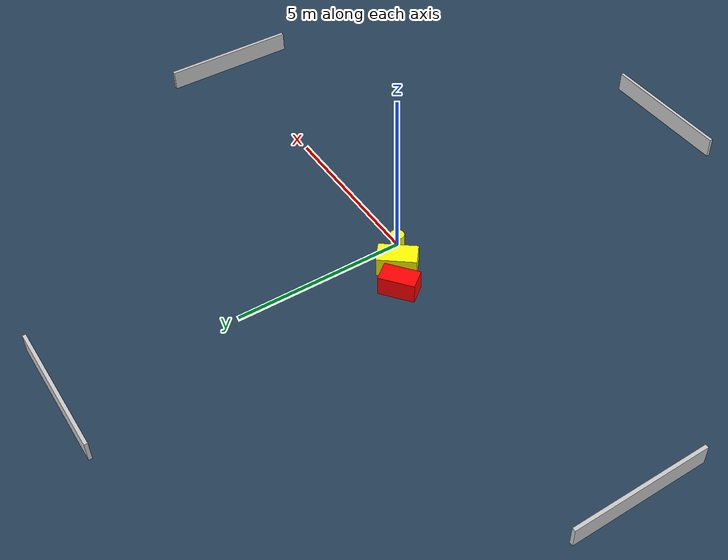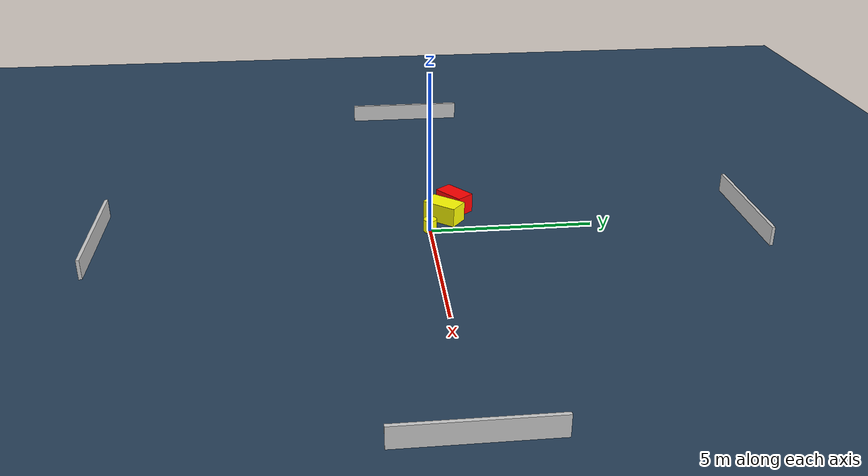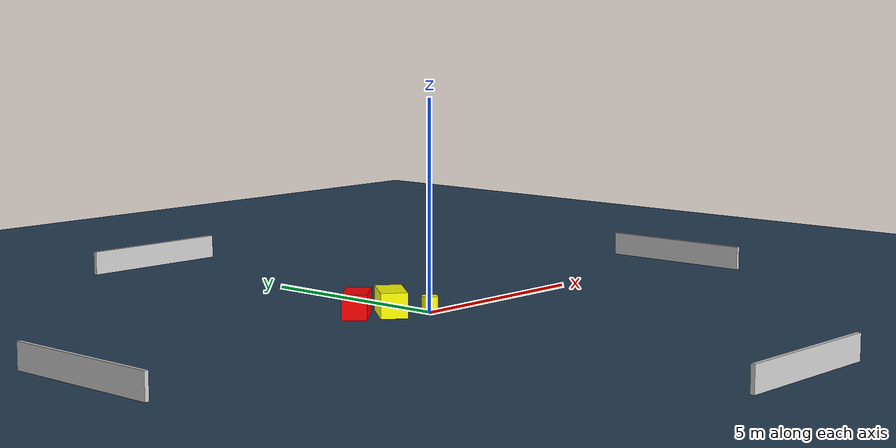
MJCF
<?xml version="1.0" ?>
<mujoco model="generated_environment">
  <option timestep="0.01" integrator="RK4" cone="elliptic"/>
  <default>
    <geom density="1"/>
  </default>
  <asset>
    <texture builtin="gradient" height="3072" name="skybox" rgb1="0.3 0.5 0.7" rgb2="0 0 0" type="skybox" width="512"/>
    <texture builtin="checker" height="300" name="groundplane" rgb1="0.2 0.3 0.4" rgb2="0.1 0.2 0.3" type="2d" width="300"/>
    <material name="groundplane" reflectance="0.2" texrepeat="5 5" texture="groundplane"/>
  </asset>
  <worldbody>
    <light dir="0 0 -1" directional="true" pos="0 0 1.5"/>
    <geom condim="3" friction="0.5 0.005 0.001" material="groundplane" name="floor" pos="0 0 0" size="0 0 0.05" type="plane"/>
    <body name="walls">
      <geom name="wall_1" condim="4" pos="-10.0 0.0 0.3" rgba="0.800000011920929 0.800000011920929 0.800000011920929 1.0" size="0.05 2.0 0.3" type="box"/>
      <geom name="wall_2" condim="4" pos="10.0 0.0 0.3" rgba="0.800000011920929 0.800000011920929 0.800000011920929 1.0" size="0.05 2.0 0.3" type="box"/>
      <geom name="wall_3" condim="4" pos="0.0 -10.0 0.3" rgba="0.800000011920929 0.800000011920929 0.800000011920929 1.0" size="2.0 0.05 0.3" type="box"/>
      <geom name="wall_4" condim="4" pos="0.0 10.0 0.3" rgba="0.800000011920929 0.800000011920929 0.800000011920929 1.0" size="2.0 0.05 0.3" type="box"/>
    </body>
    <body name="robot">
      <joint name="joint_x" type="slide" pos="0 0 0" axis="1 0 0"/>
      <joint name="joint_y" type="slide" pos="0 0 0" axis="0 1 0"/>
      <geom name="robot" type="cylinder" pos="0.0 0.0 0.2" size="0.2 0.2 0.0" mass="5.0" friction="1.0 0.005 0.0001" condim="4" rgba="1.0 1.0 0.0 1.0"/>
    </body>
    <body name="obstacle_1_movable">
      <geom name="obstacle_1_movable" condim="4" pos="-0.7731411655216548 0.5084626033764078 0.3" euler="0 0 321.2254566308988" friction="0.0 0.005 0.001" rgba="1.0 1.0 0.0 1.0" size="0.3191632004672763 0.5610892167112171 0.3" type="box" mass="0.1"/>
      <joint type="free"/>
    </body>
    <body name="obstacle_2_static">
      <geom name="obstacle_2_static" condim="4" pos="-1.4891393068143461 0.9211096793531661 0.3" euler="0 0 308.0033628966524" friction="0.0 0.005 0.001" rgba="1.0 0.0 0.0 1.0" size="0.2934325735494037 0.5198996090844152 0.3" type="box"/>
    </body>
  </worldbody>
  <actuator>
    <motor name="actuator_x" joint="joint_x" gear="1" ctrlrange="-1 1"/>
    <motor name="actuator_y" joint="joint_y" gear="1" ctrlrange="-1 1"/>
  </actuator>
</mujoco>
